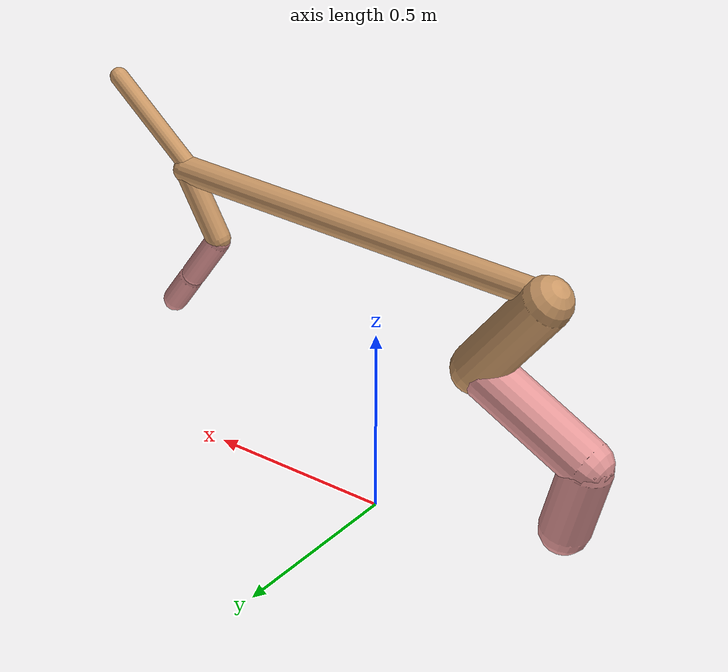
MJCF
<mujoco model="cheetah">
  <compiler angle="radian" coordinate="local" inertiafromgeom="true" settotalmass="14" />
  <default>
    <joint armature=".1" damping=".01" limited="true" solimplimit="0 .8 .03" solreflimit=".02 1" stiffness="8" />
    <geom conaffinity="0" condim="3" contype="1" friction="0.8 .1 .1" rgba="0.8 0.6 .4 1" solimp="0.0 0.8 0.01" solref="0.02 1" />
    <motor ctrllimited="true" ctrlrange="-1 1" />
  </default>
  <size nstack="300000" nuser_geom="1" />
  <option gravity="0 0 -9.81" timestep="0.01" />
  <worldbody>
    <body name="torso" pos="0.0 0.0 0.7756270879966475">
      <joint armature="0" axis="1 0 0" damping="0" limited="false" name="ignorex" pos="0 0 0" stiffness="0" type="slide" />
      <joint armature="0" axis="0 0 1" damping="0" limited="false" name="ignorez" pos="0 0 0" stiffness="0" type="slide" />
      <joint armature="0" axis="0 1 0" damping="0" limited="false" name="ignorey" pos="0 0 0" stiffness="0" type="hinge" />
      <geom fromto="-0.5 0.0 0.0 0.5940357786905985 0.0 0.0" name="torso" size="0.03534652097939255" type="capsule" />
      <geom axisangle="0 1 0 .87" name="head" pos="0.6940357786905985 0.0 0.1" size="0.023774488798859992 0.15" type="capsule" />

      <body name="bthigh" pos="-.5 0 0">
        <joint axis="0 1 0" damping="6" name="bthigh" pos="0 0 0" range="-.52 1.05" stiffness="240" type="hinge" />
        <geom axisangle="0 1 0 -3.8" name="bthigh" pos="0.10566613911667457 0.0 -0.13736598085167692" size="0.06673640584383006 0.1542931591182321" type="capsule" />
        <body name="bshin" pos="0.17133227823334912 0.0 -0.26473196170335384">
          <joint axis="0 1 0" damping="4.5" name="bshin" pos="0 0 0" range="-.785 .785" stiffness="180" type="hinge" />
          <geom axisangle="0 1 0 -2.03" name="bshin" pos="-0.14859867676445063 0.0 -0.07429933838222531" rgba="0.9 0.6 0.6 1" size="0.06673640584383006 0.15961361288092976" type="capsule" />
          <body name="bfoot" pos="-0.29719735352890125 0.0 -0.14859867676445063">
            <joint axis="0 1 0" damping="3" name="bfoot" pos="0 0 0" range="-.4 .785" stiffness="120" type="hinge" />
            <geom axisangle="0 1 0 -.27" name="bfoot" pos="0.03178006642810389 0.0 -0.10275554811753593" rgba="0.9 0.6 0.6 1" size="0.06673640584383006 0.10002453073871599" type="capsule" />
            <inertial mass="10" />
          </body>
        </body>
      </body>
      <body name="fthigh" pos="0.5940357786905985 0.0 0.0">
        <joint axis="0 1 0" damping="4.5" name="fthigh" pos="0 0 0" range="-1.5 0.8" stiffness="180" type="hinge" />
        <geom axisangle="0 1 0 .52" name="fthigh" pos="-0.04989554608158897 0.0 -0.0855352218541525" size="0.0322 0.0931" type="capsule" />
        <body name="fshin" pos="-0.09979109216317794 0.0 -0.171070443708305">
          <joint axis="0 1 0" damping="3" name="fshin" pos="0 0 0" range="-1.2 1.1" stiffness="120" type="hinge" />
          <geom axisangle="0 1 0 -.6" name="fshin" pos="0.046381400387749405 0.0 -0.06422040053688378" rgba="0.9 0.6 0.6 1" size="0.0322 0.07419999999999999" type="capsule" />
          <body name="ffoot" pos="0.09276280077549881 0.0 -0.12844080107376757">
            <joint axis="0 1 0" damping="1.5" name="ffoot" pos="0 0 0" range="-3.1 -0.3" stiffness="60" type="hinge" />
            <geom axisangle="0 1 0 -.6" name="ffoot" pos="0.033644090582416526 0.0 -0.05233525201709238" rgba="0.9 0.6 0.6 1" size="0.0322 0.049" type="capsule" />
            <inertial mass="10" />
          </body>
        </body>
      </body>
    </body>
  </worldbody>
  <actuator>
    <motor gear="120" joint="bthigh" name="bthigh" />
    <motor gear="90" joint="bshin" name="bshin" />
    <motor gear="60" joint="bfoot" name="bfoot" />
    <motor gear="120" joint="fthigh" name="fthigh" />
    <motor gear="60" joint="fshin" name="fshin" />
    <motor gear="30" joint="ffoot" name="ffoot" />
  </actuator>
</mujoco>
